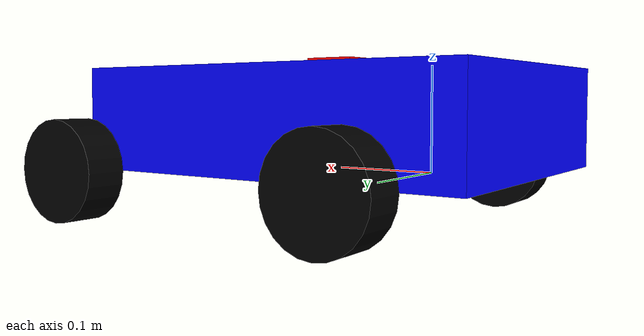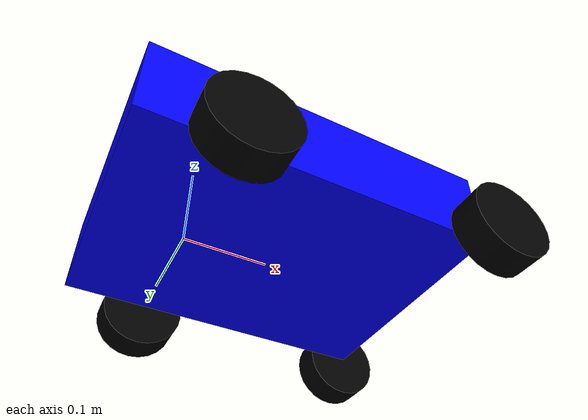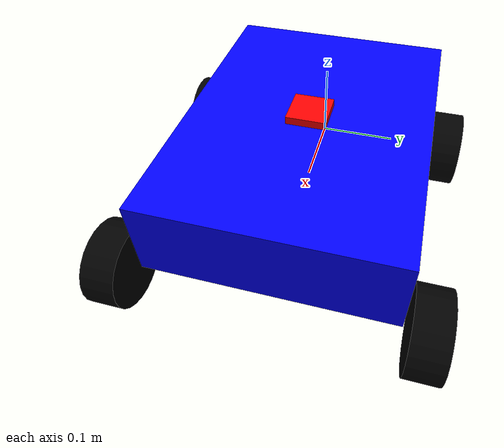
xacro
<?xml version="1.0"?>
<robot xmlns:xacro="http://www.ros.org/wiki/xacro"  name="robot">

    <xacro:property name="chassis_length" value="0.4"/>
    <xacro:property name="chassis_width" value="0.3"/>
    <xacro:property name="chassis_height" value="0.1"/>
    <xacro:property name="wheel_radius" value="0.05"/>
    <xacro:property name="wheel_width" value="0.04"/>
    <xacro:property name="wheel_separation" value="0.35"/>
    <xacro:property name="wheel_offset_x" value="0.15"/>

    <!-- Base Link -->
    <link name="base_link">
    </link>

    <!-- Chassis -->
    <joint name="chassis_joint" type="fixed">
        <parent link="base_link"/>
        <child link="chassis"/>
        <origin xyz="-0.1 0 0"/>
    </joint>

    <link name="chassis">
        <visual>
            <origin xyz="${chassis_length/2} 0 ${chassis_height/2}"/>
            <geometry>
                <box size="${chassis_length} ${chassis_width} ${chassis_height}"/>
            </geometry>
            <material name="blue">
                <color rgba="0 0 1 1"/>
            </material>
        </visual>
        <collision>
            <origin xyz="${chassis_length/2} 0 ${chassis_height/2}"/>
            <geometry>
                <box size="${chassis_length} ${chassis_width} ${chassis_height}"/>
            </geometry>
        </collision>
        <inertial>
            <origin xyz="${chassis_length/2} 0 ${chassis_height/2}"/>
            <mass value="1.0"/>
            <inertia ixx="0.01" ixy="0.0" ixz="0.0" iyy="0.01" iyz="0.0" izz="0.01"/>
        </inertial>
    </link>

    <!-- Wheels -->
    <xacro:macro name="wheel" params="name x y">
        <link name="${name}_wheel">
            <visual>
                <geometry>
                    <cylinder radius="${wheel_radius}" length="${wheel_width}"/>
                </geometry>
                <material name="black">
                    <color rgba="0 0 0 1"/>
                </material>
            </visual>
            <collision>
                <geometry>
                    <cylinder radius="${wheel_radius}" length="${wheel_width}"/>
                </geometry>
            </collision>
            <inertial>
                <mass value="0.1"/>
                <inertia ixx="0.0001" ixy="0.0" ixz="0.0" iyy="0.0001" iyz="0.0" izz="0.0001"/>
            </inertial>
        </link>

        <joint name="${name}_wheel_joint" type="continuous">
            <parent link="base_link"/>
            <child link="${name}_wheel"/>
            <origin xyz="${x} ${y} 0" rpy="${-pi/2} 0 0"/>
            <axis xyz="0 0 1"/>
        </joint>
    </xacro:macro>

    <!-- Rear Wheels (Driven) -->
    <xacro:wheel name="left_rear" x="0" y="${wheel_separation/2}"/>
    <xacro:wheel name="right_rear" x="0" y="${-wheel_separation/2}"/>

    <!-- Front Wheels (Caster-like, simplified as sliding wheels for diff drive stability or just spheres) -->
    <xacro:wheel name="left_front" x="${chassis_length-0.1}" y="${wheel_separation/2}"/>
    <xacro:wheel name="right_front" x="${chassis_length-0.1}" y="${-wheel_separation/2}"/>

    <!-- IMU Sensor -->
    <joint name="imu_joint" type="fixed">
        <parent link="chassis"/>
        <child link="imu_link"/>
        <origin xyz="${chassis_length/2} 0 ${chassis_height}" rpy="0 0 0"/>
    </joint>

    <link name="imu_link">
        <visual>
            <geometry>
                <box size="0.05 0.05 0.02"/>
            </geometry>
            <material name="red">
                <color rgba="1 0 0 1"/>
            </material>
        </visual>
        <collision>
            <geometry>
                <box size="0.05 0.05 0.02"/>
            </geometry>
        </collision>
        <inertial>
            <mass value="0.01"/>
            <inertia ixx="0.00001" ixy="0" ixz="0" iyy="0.00001" iyz="0" izz="0.00001"/>
        </inertial>
    </link>

    <!-- Gazebo Plugins for Ignition Fortress -->

    <!-- Diff Drive Plugin -->
    <gazebo>
        <plugin filename="libignition-gazebo-diff-drive-system.so" name="ignition::gazebo::systems::DiffDrive">
            <left_joint>left_rear_wheel_joint</left_joint>
            <right_joint>right_rear_wheel_joint</right_joint>
            <wheel_separation>${wheel_separation}</wheel_separation>
            <wheel_radius>${wheel_radius}</wheel_radius>
            <odom_publish_frequency>20</odom_publish_frequency>
            <topic>cmd_vel</topic>
            <odom_topic>odom</odom_topic>
            <tf_topic>tf</tf_topic>
            <frame_id>odom</frame_id>
            <child_frame_id>base_link</child_frame_id>
        </plugin>
    </gazebo>

    <!-- IMU Plugin -->
    <gazebo reference="imu_link">
        <sensor name="imu_sensor" type="imu">
            <always_on>1</always_on>
            <update_rate>20</update_rate>
            <visualize>true</visualize>
            <topic>imu</topic>
        </sensor>
    </gazebo>

    <!-- We also need the IMU system plugin, but often it's loaded by default or in world.
         However, adding it to the model ensures it works. -->
    <gazebo>
        <plugin filename="libignition-gazebo-imu-system.so" name="ignition::gazebo::systems::Imu">
        </plugin>
    </gazebo>

    <!-- Joint State Publisher -->
    <gazebo>
        <plugin filename="libignition-gazebo-joint-state-publisher-system.so" name="ignition::gazebo::systems::JointStatePublisher">
            <topic>joint_states</topic>
        </plugin>
    </gazebo>

    <!-- Friction for wheels -->
    <gazebo reference="left_rear_wheel">
        <mu1>1.0</mu1>
        <mu2>1.0</mu2>
    </gazebo>
    <gazebo reference="right_rear_wheel">
        <mu1>1.0</mu1>
        <mu2>1.0</mu2>
    </gazebo>
    <!-- Low friction for front wheels to allow turning (skid-like behavior) -->
    <gazebo reference="left_front_wheel">
        <mu1>0.01</mu1>
        <mu2>0.01</mu2>
    </gazebo>
    <gazebo reference="right_front_wheel">
        <mu1>0.01</mu1>
        <mu2>0.01</mu2>
    </gazebo>

</robot>
